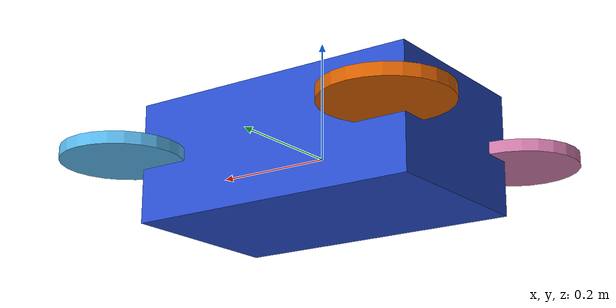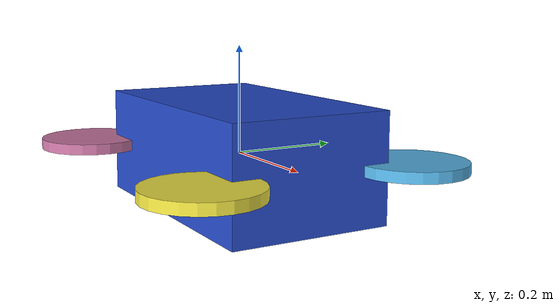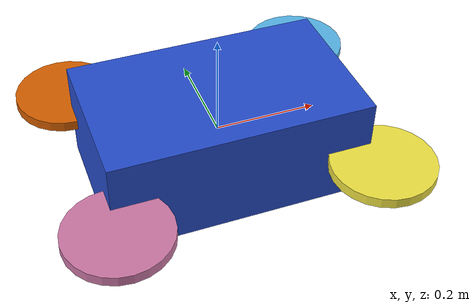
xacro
<?xml version="1.0"?>
<robot name="ackermann_bot" xmlns:xacro="http://www.ros.org/wiki/xacro">

  <xacro:property name="wheelbase" value="0.5"/>   <!-- Distance between front and rear axle -->
  <xacro:property name="track_width" value="0.4"/> <!-- Distance between left and right wheels -->
  <xacro:property name="wheel_radius" value="0.1"/>

  <!-- Base Link -->
  <link name="base_link">
    <visual>
      <geometry>
        <box size="0.5 0.3 0.2"/> <!-- Body of the robot -->
      </geometry>
      <material name="blue"/>
    </visual>
  </link>

  <!-- Front Left Wheel -->
  <joint name="front_left_steering_joint" type="continuous">
    <parent link="base_link"/>
    <child link="front_left_wheel"/>
    <origin xyz="${wheelbase/2} ${track_width/2} 0"/>
    <axis xyz="0 0 1"/>  <!-- Steering rotation along Z-axis -->
  </joint>

  <link name="front_left_wheel">
    <visual>
      <geometry>
        <cylinder length="0.02" radius="${wheel_radius}"/>
      </geometry>
    </visual>
  </link>

  <joint name="front_left_wheel_joint" type="continuous">
    <parent link="front_left_wheel"/>
    <child link="front_left_tire"/>
    <origin xyz="0 0 0"/>
    <axis xyz="0 1 0"/>  <!-- Rolling motion along Y-axis -->
  </joint>

  <link name="front_left_tire">
    <visual>
      <geometry>
        <cylinder length="0.02" radius="${wheel_radius}"/>
      </geometry>
    </visual>
  </link>

  <!-- Front Right Wheel -->
  <joint name="front_right_steering_joint" type="continuous">
    <parent link="base_link"/>
    <child link="front_right_wheel"/>
    <origin xyz="${wheelbase/2} -${track_width/2} 0"/>
    <axis xyz="0 0 1"/>  <!-- Steering rotation along Z-axis -->
  </joint>

  <link name="front_right_wheel">
    <visual>
      <geometry>
        <cylinder length="0.02" radius="${wheel_radius}"/>
      </geometry>
    </visual>
  </link>

  <joint name="front_right_wheel_joint" type="continuous">
    <parent link="front_right_wheel"/>
    <child link="front_right_tire"/>
    <origin xyz="0 0 0"/>
    <axis xyz="0 1 0"/>  <!-- Rolling motion along Y-axis -->
  </joint>

  <link name="front_right_tire">
    <visual>
      <geometry>
        <cylinder length="0.02" radius="${wheel_radius}"/>
      </geometry>
    </visual>
  </link>

  <!-- Rear Left Wheel -->
  <joint name="rear_left_wheel_joint" type="continuous">
    <parent link="base_link"/>
    <child link="rear_left_wheel"/>
    <origin xyz="-${wheelbase/2} ${track_width/2} 0"/>
    <axis xyz="0 1 0"/>  <!-- Rolling motion along Y-axis -->
  </joint>

  <link name="rear_left_wheel">
    <visual>
      <geometry>
        <cylinder length="0.02" radius="${wheel_radius}"/>
      </geometry>
    </visual>
  </link>

  <!-- Rear Right Wheel -->
  <joint name="rear_right_wheel_joint" type="continuous">
    <parent link="base_link"/>
    <child link="rear_right_wheel"/>
    <origin xyz="-${wheelbase/2} -${track_width/2} 0"/>
    <axis xyz="0 1 0"/>  <!-- Rolling motion along Y-axis -->
  </joint>

  <link name="rear_right_wheel">
    <visual>
      <geometry>
        <cylinder length="0.02" radius="${wheel_radius}"/>
      </geometry>
    </visual>
  </link>

</robot>
